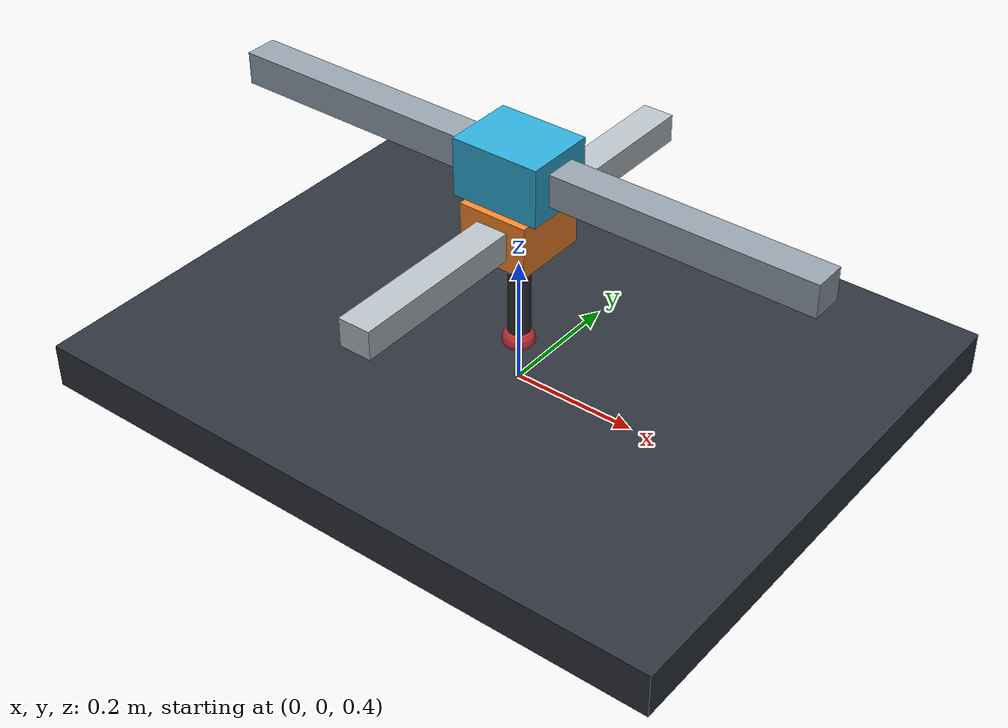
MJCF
<!-- Copyright 2026 The MuJoCo Metal contributors; Apache-2.0. -->
<mujoco model="cable_plotter">
  <compiler angle="radian" inertiafromgeom="true"/>
  <option timestep=".002" integrator="Euler" gravity="0 0 0">
    <flag contact="disable"/>
  </option>
  <visual>
    <headlight ambient=".55 .55 .55" diffuse=".9 .9 .9" specular=".15 .15 .15"/>
  </visual>
  <default>
    <joint damping="0" frictionloss="0" limited="false"/>
    <geom contype="0" conaffinity="0" density="480"/>
  </default>
  <worldbody>
    <light pos="0 -1 2"/>
    <geom name="base" type="box" pos="0 0 .43" size=".52 .42 .035" rgba=".18 .2 .24 1"/>
    <geom name="x_rail" type="box" pos="0 0 .76" size=".48 .025 .025" rgba=".58 .63 .68 1"/>
    <body name="x_carriage" pos="0 0 .76">
      <joint name="x_slide" type="slide" axis="1 0 0"/>
      <geom name="x_block" type="box" size=".07 .055 .045" rgba=".18 .68 .85 1"/>
      <geom name="y_rail" type="box" pos="0 0 -.09" size=".025 .34 .022" rgba=".72 .75 .78 1"/>
      <body name="y_carriage" pos="0 0 -.09">
        <joint name="y_slide" type="slide" axis="0 1 0"/>
        <geom name="y_block" type="box" size=".055 .06 .04" rgba=".98 .53 .16 1"/>
        <body name="pen" pos="0 0 -.075">
          <site name="pen_tip" pos="0 0 -.125"/>
          <geom name="stylus" type="cylinder" size=".018 .12" rgba=".18 .18 .2 1"/>
          <geom name="tip" type="sphere" pos="0 0 -.125" size=".025" rgba=".8 .2 .22 1"/>
        </body>
      </body>
    </body>
  </worldbody>
  <tendon>
    <fixed name="cable_diagonal_a">
      <joint joint="x_slide" coef="1"/>
      <joint joint="y_slide" coef="1"/>
    </fixed>
    <fixed name="cable_diagonal_b">
      <joint joint="x_slide" coef="1"/>
      <joint joint="y_slide" coef="-1"/>
    </fixed>
  </tendon>
  <actuator>
    <general name="cable_a" tendon="cable_diagonal_a" dyntype="none"
      gaintype="fixed" gainprm="1.8" biastype="affine"
      biasprm="0 -1.8 -1.15" forcelimited="true" forcerange="-2 2"
      ctrllimited="true" ctrlrange="-.48 .48"/>
    <general name="cable_b" tendon="cable_diagonal_b" dyntype="none"
      gaintype="fixed" gainprm="1.8" biastype="affine"
      biasprm="0 -1.8 -1.15" forcelimited="true" forcerange="-2 2"
      ctrllimited="true" ctrlrange="-.48 .48"/>
  </actuator>
</mujoco>
